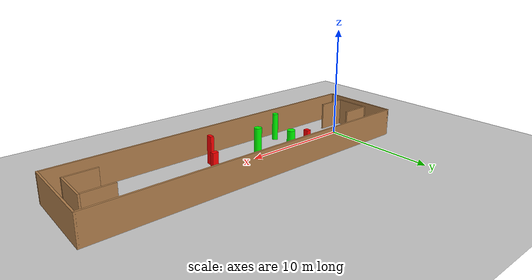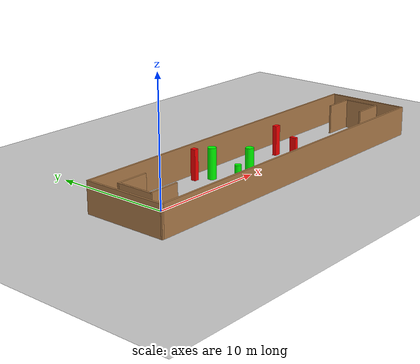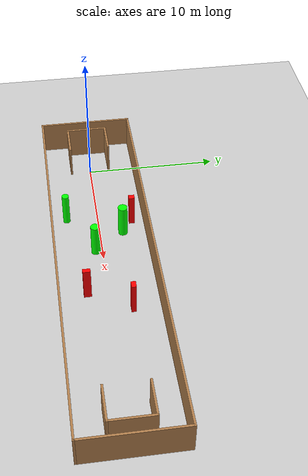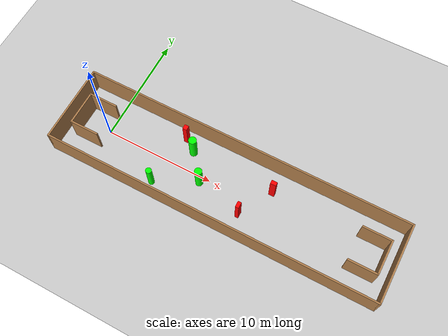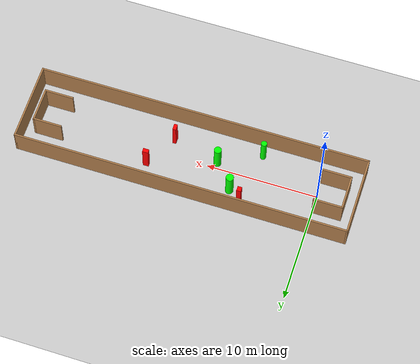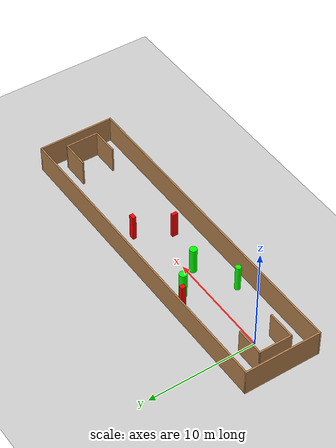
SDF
<sdf version="1.7">
 <world name="default">
  <light name="sun" type="directional">
   <pose>0 0 10 0 -0 0</pose>
   <diffuse>0.8 0.8 0.8 1</diffuse>
   <specular>0.2 0.2 0.2 1</specular>
   <attenuation>
    <range>1000</range>
    <constant>0.9</constant>
    <linear>0.01</linear>
    <quadratic>0.001</quadratic>
   </attenuation>
   <direction>-0.5 0.1 -0.9</direction>
   <spot><inner_angle>0</inner_angle><outer_angle>0</outer_angle><falloff>0</falloff></spot>
  </light>
  <model name="ground_plane">
   <static>1</static>
   <link name="link">
    <collision name="collision">
     <geometry><plane><normal>0 0 1</normal><size>100 100</size></plane></geometry>
     <surface>
      <contact><collide_bitmask>65535</collide_bitmask></contact>
      <friction><ode><mu>100</mu><mu2>50</mu2></ode></friction>
     </surface>
    </collision>
    <visual name="visual">
     <cast_shadows>0</cast_shadows>
     <geometry><plane><normal>0 0 1</normal><size>100 100</size></plane></geometry>
     <material>
      <script><uri>file://media/materials/scripts/gazebo.material</uri><name>Gazebo/Grey</name></script>
     </material>
    </visual>
   </link>
  </model>
  <gravity>0 0 -9.8</gravity>
  <magnetic_field>6e-06 2.3e-05 -4.2e-05</magnetic_field>
  <atmosphere type="adiabatic"/>
  <physics type="ode">
   <max_step_size>0.001</max_step_size>
   <real_time_factor>1</real_time_factor>
   <real_time_update_rate>1000</real_time_update_rate>
  </physics>
  <scene><ambient>0.4 0.4 0.4 1</ambient><background>0.7 0.7 0.7 1</background><shadows>1</shadows></scene>
  <spherical_coordinates>
   <surface_model>EARTH_WGS84</surface_model>
   <latitude_deg>0</latitude_deg>
   <longitude_deg>0</longitude_deg>
   <elevation>0</elevation>
   <heading_deg>0</heading_deg>
  </spherical_coordinates>
  <model name="my_base_walls">
   <link name="Wall_0">
    <collision name="Wall_0_Collision">
     <geometry><box><size>7.15 0.15 2.5</size></box></geometry>
     <pose>0 0 1.25 0 -0 0</pose>
    </collision>
    <visual name="Wall_0_Visual">
     <pose>0 0 1.25 0 -0 0</pose>
     <geometry><box><size>7.15 0.15 2.5</size></box></geometry>
     <material>
      <script><uri>file://media/materials/scripts/gazebo.material</uri><name>Gazebo/Wood</name></script>
      <ambient>1 1 1 1</ambient>
     </material>
     <meta><layer>0</layer></meta>
    </visual>
    <pose>-15 0 0 0 -0 1.5708</pose>
   </link>
   <link name="Wall_10">
    <collision name="Wall_10_Collision">
     <geometry><box><size>2.65 0.15 2.5</size></box></geometry>
     <pose>0 0 1.25 0 -0 0</pose>
    </collision>
    <visual name="Wall_10_Visual">
     <pose>0 0 1.25 0 -0 0</pose>
     <geometry><box><size>2.65 0.15 2.5</size></box></geometry>
     <material>
      <script><uri>file://media/materials/scripts/gazebo.material</uri><name>Gazebo/Wood</name></script>
      <ambient>1 1 1 1</ambient>
     </material>
     <meta><layer>0</layer></meta>
    </visual>
    <pose>-12.75 -1.5 0 0 -0 0</pose>
   </link>
   <link name="Wall_12">
    <collision name="Wall_12_Collision">
     <geometry><box><size>2.65 0.15 2.5</size></box></geometry>
     <pose>0 0 1.25 0 -0 0</pose>
    </collision>
    <visual name="Wall_12_Visual">
     <pose>0 0 1.25 0 -0 0</pose>
     <geometry><box><size>2.65 0.15 2.5</size></box></geometry>
     <material>
      <script><uri>file://media/materials/scripts/gazebo.material</uri><name>Gazebo/Wood</name></script>
      <ambient>1 1 1 1</ambient>
     </material>
     <meta><layer>0</layer></meta>
    </visual>
    <pose>-12.75 1.5 0 0 -0 0</pose>
   </link>
   <link name="Wall_14">
    <collision name="Wall_14_Collision">
     <geometry><box><size>3.15 0.15 2.5</size></box></geometry>
     <pose>0 0 1.25 0 -0 0</pose>
    </collision>
    <visual name="Wall_14_Visual">
     <pose>0 0 1.25 0 -0 0</pose>
     <geometry><box><size>3.15 0.15 2.5</size></box></geometry>
     <material>
      <script><uri>file://media/materials/scripts/gazebo.material</uri><name>Gazebo/Wood</name></script>
      <ambient>1 1 1 1</ambient>
     </material>
     <meta><layer>0</layer></meta>
    </visual>
    <pose>14 0 0 0 -0 -1.5708</pose>
   </link>
   <link name="Wall_15">
    <collision name="Wall_15_Collision">
     <geometry><box><size>2.65 0.15 2.5</size></box></geometry>
     <pose>0 0 1.25 0 -0 0</pose>
    </collision>
    <visual name="Wall_15_Visual">
     <pose>0 0 1.25 0 -0 0</pose>
     <geometry><box><size>2.65 0.15 2.5</size></box></geometry>
     <material>
      <script><uri>file://media/materials/scripts/gazebo.material</uri><name>Gazebo/Wood</name></script>
      <ambient>1 1 1 1</ambient>
     </material>
     <meta><layer>0</layer></meta>
    </visual>
    <pose>12.75 -1.5 0 0 -0 3.14159</pose>
   </link>
   <link name="Wall_17">
    <collision name="Wall_17_Collision">
     <geometry><box><size>2.65 0.15 2.5</size></box></geometry>
     <pose>0 0 1.25 0 -0 0</pose>
    </collision>
    <visual name="Wall_17_Visual">
     <pose>0 0 1.25 0 -0 0</pose>
     <geometry><box><size>2.65 0.15 2.5</size></box></geometry>
     <material>
      <script><uri>file://media/materials/scripts/gazebo.material</uri><name>Gazebo/Wood</name></script>
      <ambient>1 1 1 1</ambient>
     </material>
     <meta><layer>0</layer></meta>
    </visual>
    <pose>12.75 1.5 0 0 -0 3.14159</pose>
   </link>
   <link name="Wall_2">
    <collision name="Wall_2_Collision">
     <geometry><box><size>30.15 0.15 2.5</size></box></geometry>
     <pose>0 0 1.25 0 -0 0</pose>
    </collision>
    <visual name="Wall_2_Visual">
     <pose>0 0 1.25 0 -0 0</pose>
     <geometry><box><size>30.15 0.15 2.5</size></box></geometry>
     <material>
      <script><uri>file://media/materials/scripts/gazebo.material</uri><name>Gazebo/Wood</name></script>
      <ambient>1 1 1 1</ambient>
     </material>
     <meta><layer>0</layer></meta>
    </visual>
    <pose>-0 -3.5 0 0 -0 0</pose>
   </link>
   <link name="Wall_4">
    <collision name="Wall_4_Collision">
     <geometry><box><size>30.15 0.15 2.5</size></box></geometry>
     <pose>0 0 1.25 0 -0 0</pose>
    </collision>
    <visual name="Wall_4_Visual">
     <pose>0 0 1.25 0 -0 0</pose>
     <geometry><box><size>30.15 0.15 2.5</size></box></geometry>
     <material>
      <script><uri>file://media/materials/scripts/gazebo.material</uri><name>Gazebo/Wood</name></script>
      <ambient>1 1 1 1</ambient>
     </material>
     <meta><layer>0</layer></meta>
    </visual>
    <pose>-0 3.5 0 0 -0 0</pose>
   </link>
   <link name="Wall_6">
    <collision name="Wall_6_Collision">
     <geometry><box><size>7.15 0.15 2.5</size></box></geometry>
     <pose>0 0 1.25 0 -0 0</pose>
    </collision>
    <visual name="Wall_6_Visual">
     <pose>0 0 1.25 0 -0 0</pose>
     <geometry><box><size>7.15 0.15 2.5</size></box></geometry>
     <material>
      <script><uri>file://media/materials/scripts/gazebo.material</uri><name>Gazebo/Wood</name></script>
      <ambient>1 1 1 1</ambient>
     </material>
     <meta><layer>0</layer></meta>
    </visual>
    <pose>15 0 0 0 -0 -1.5708</pose>
   </link>
   <link name="Wall_9">
    <collision name="Wall_9_Collision">
     <geometry><box><size>3.15 0.15 2.5</size></box></geometry>
     <pose>0 0 1.25 0 -0 0</pose>
    </collision>
    <visual name="Wall_9_Visual">
     <pose>0 0 1.25 0 -0 0</pose>
     <geometry><box><size>3.15 0.15 2.5</size></box></geometry>
     <material>
      <script><uri>file://media/materials/scripts/gazebo.material</uri><name>Gazebo/Wood</name></script>
      <ambient>1 1 1 1</ambient>
     </material>
     <meta><layer>0</layer></meta>
    </visual>
    <pose>-14 0 0 0 -0 -1.5708</pose>
   </link>
   <static>1</static>
   <pose>11.5 0 0 0 -0 0</pose>
  </model>
  <model name="cylinder1">
   <static>1</static>
   <link name="link">
    <inertial>
     <mass>1</mass>
     <inertia><ixx>0.5</ixx><ixy>0</ixy><ixz>0</ixz><iyy>0.5</iyy><iyz>0</iyz><izz>1</izz></inertia>
    </inertial>
    <collision name="collision">
     <geometry><cylinder><radius>0.34968625170168643</radius><length>2.5</length></cylinder></geometry>
    </collision>
    <visual name="visual">
     <geometry><cylinder><radius>0.34968625170168643</radius><length>2.5</length></cylinder></geometry>
     <material>
      <ambient>0 1 0 1</ambient>
      <diffuse>0 1 0 1</diffuse>
      <specular>0.1 0.1 0.1 1</specular>
      <emissive>0 0 0 0</emissive>
     </material>
    </visual>
   </link>
   <pose>7.443504871592626 1.7317347560561283 1.25 0 0 0</pose>
  </model>
  <model name="cylinder2">
   <static>1</static>
   <link name="link">
    <inertial>
     <mass>1</mass>
     <inertia><ixx>0.5</ixx><ixy>0</ixy><ixz>0</ixz><iyy>0.5</iyy><iyz>0</iyz><izz>1</izz></inertia>
    </inertial>
    <collision name="collision">
     <geometry><cylinder><radius>0.3293080795403013</radius><length>2.5</length></cylinder></geometry>
    </collision>
    <visual name="visual">
     <geometry><cylinder><radius>0.3293080795403013</radius><length>2.5</length></cylinder></geometry>
     <material>
      <ambient>0 1 0 1</ambient>
      <diffuse>0 1 0 1</diffuse>
      <specular>0.1 0.1 0.1 1</specular>
      <emissive>0 0 0 0</emissive>
     </material>
    </visual>
   </link>
   <pose>9.230867334976894 -0.4956581634964472 1.25 0 0 0</pose>
  </model>
  <model name="cylinder3">
   <static>1</static>
   <link name="link">
    <inertial>
     <mass>1</mass>
     <inertia><ixx>0.5</ixx><ixy>0</ixy><ixz>0</ixz><iyy>0.5</iyy><iyz>0</iyz><izz>1</izz></inertia>
    </inertial>
    <collision name="collision">
     <geometry><cylinder><radius>0.2610562549161606</radius><length>2.5</length></cylinder></geometry>
    </collision>
    <visual name="visual">
     <geometry><cylinder><radius>0.2610562549161606</radius><length>2.5</length></cylinder></geometry>
     <material>
      <ambient>0 1 0 1</ambient>
      <diffuse>0 1 0 1</diffuse>
      <specular>0.1 0.1 0.1 1</specular>
      <emissive>0 0 0 0</emissive>
     </material>
    </visual>
   </link>
   <pose>5.602232207349237 -2.349757059276845 1.25 0 0 0</pose>
  </model>
  <model name="box1">
   <static>1</static>
   <link name="link">
    <inertial>
     <mass>1</mass>
     <inertia><ixx>0.083</ixx><ixy>0</ixy><ixz>0</ixz><iyy>0.083</iyy><iyz>0</iyz><izz>0.083</izz></inertia>
    </inertial>
    <collision name="collision">
     <geometry><box><size>0.3095841164106713 0.5504066785863634 2.5</size></box></geometry>
    </collision>
    <visual name="visual">
     <geometry><box><size>0.3095841164106713 0.5504066785863634 2.5</size></box></geometry>
     <material>
      <ambient>1 0 0 1</ambient>
      <diffuse>1 0 0 1</diffuse>
      <specular>0.1 0.1 0.1 1</specular>
      <emissive>0 0 0 0</emissive>
     </material>
    </visual>
    <sensor name="my_contact" type="contact">
     <contact><collision>box_collision</collision><topic>__default_topic__</topic></contact>
    </sensor>
   </link>
   <pose>13.466542220997272 -1.5103413863685557 1.25 0 0 0</pose>
  </model>
  <model name="box2">
   <static>1</static>
   <link name="link">
    <inertial>
     <mass>1</mass>
     <inertia><ixx>0.083</ixx><ixy>0</ixy><ixz>0</ixz><iyy>0.083</iyy><iyz>0</iyz><izz>0.083</izz></inertia>
    </inertial>
    <collision name="collision">
     <geometry><box><size>0.38724959985902396 0.432214067131763 2.5</size></box></geometry>
    </collision>
    <visual name="visual">
     <geometry><box><size>0.38724959985902396 0.432214067131763 2.5</size></box></geometry>
     <material>
      <ambient>1 0 0 1</ambient>
      <diffuse>1 0 0 1</diffuse>
      <specular>0.1 0.1 0.1 1</specular>
      <emissive>0 0 0 0</emissive>
     </material>
    </visual>
    <sensor name="my_contact" type="contact">
     <contact><collision>box_collision</collision><topic>__default_topic__</topic></contact>
    </sensor>
   </link>
   <pose>6.345754300673729 2.537682653536451 1.25 0 0 0</pose>
  </model>
  <model name="box3">
   <static>1</static>
   <link name="link">
    <inertial>
     <mass>1</mass>
     <inertia><ixx>0.083</ixx><ixy>0</ixy><ixz>0</ixz><iyy>0.083</iyy><iyz>0</iyz><izz>0.083</izz></inertia>
    </inertial>
    <collision name="collision">
     <geometry><box><size>0.5178728706218845 0.347006256945228 2.5</size></box></geometry>
    </collision>
    <visual name="visual">
     <geometry><box><size>0.5178728706218845 0.347006256945228 2.5</size></box></geometry>
     <material>
      <ambient>1 0 0 1</ambient>
      <diffuse>1 0 0 1</diffuse>
      <specular>0.1 0.1 0.1 1</specular>
      <emissive>0 0 0 0</emissive>
     </material>
    </visual>
    <sensor name="my_contact" type="contact">
     <contact><collision>box_collision</collision><topic>__default_topic__</topic></contact>
    </sensor>
   </link>
   <pose>15.156459828640243 1.4936142130546104 1.25 0 0 0</pose>
  </model>
 </world>
</sdf>
